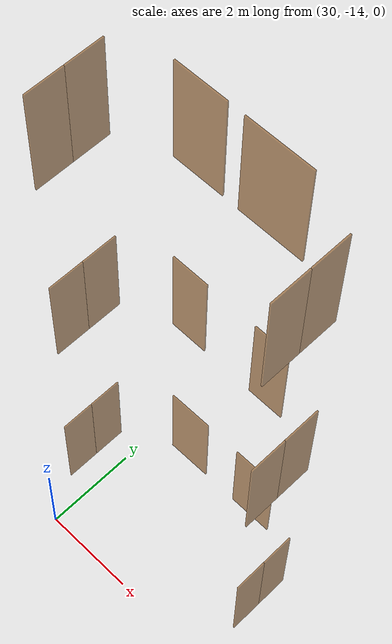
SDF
<sdf version="1.7">
 <world name="sim_world">
  <model name="p12">
   <pose>29.474815561020435 -12.36847797102309 0.0 0 0 -1.5707963267948966</pose>
   <link name="right">
    <pose>0.36403365826197787 0 1.11 0 0 0</pose>
    <visual name="right_visual">
     <geometry><box><size>0.7180673165239557 0.03 2.2</size></box></geometry>
     <material>
      <ambient>0.5 0.25 0 0.6</ambient>
      <diffuse>0.5 0.25 0 0.6</diffuse>
      <pbr><metal><metalness>0.0</metalness></metal></pbr>
     </material>
    </visual>
    <collision name="right_collision">
     <geometry><box><size>0.7180673165239557 0.03 2.2</size></box></geometry>
     <surface><contact><collide_bitmask>0x02</collide_bitmask></contact></surface>
    </collision>
    <inertial>
     <mass>50.0</mass>
     <inertia><ixx>20.17041666666667</ixx><iyy>22.315086129416315</iyy><izz>2.1521694627496455</izz></inertia>
    </inertial>
   </link>
   <joint name="right_joint" type="revolute">
    <parent>world</parent>
    <child>right</child>
    <axis><xyz>0 0 -1</xyz><limit><lower>0</lower><upper>1.57</upper></limit></axis>
    <pose>0.36403365826197787 0 0 0 0 0</pose>
   </joint>
   <link name="left">
    <pose>-0.36403365826197787 0 1.11 0 0 0</pose>
    <visual name="left_visual">
     <geometry><box><size>0.7180673165239557 0.03 2.2</size></box></geometry>
     <material>
      <ambient>0.5 0.25 0 0.6</ambient>
      <diffuse>0.5 0.25 0 0.6</diffuse>
      <pbr><metal><metalness>0.0</metalness></metal></pbr>
     </material>
    </visual>
    <collision name="left_collision">
     <geometry><box><size>0.7180673165239557 0.03 2.2</size></box></geometry>
     <surface><contact><collide_bitmask>0x02</collide_bitmask></contact></surface>
    </collision>
    <inertial>
     <mass>50.0</mass>
     <inertia><ixx>20.17041666666667</ixx><iyy>22.315086129416315</iyy><izz>2.1521694627496455</izz></inertia>
    </inertial>
   </link>
   <joint name="left_joint" type="revolute">
    <parent>world</parent>
    <child>left</child>
    <axis><xyz>0 0 -1</xyz><limit><lower>-1.57</lower><upper>0</upper></limit></axis>
    <pose>-0.36403365826197787 0 0 0 0 0</pose>
   </joint>
   <plugin name="register_component" filename="libregister_component.so">
    <component name="Door">
     <v_max_door>0.5</v_max_door>
     <a_max_door>0.3</a_max_door>
     <a_nom_door>0.15</a_nom_door>
     <dx_min_door>0.01</dx_min_door>
     <f_max_door>500.0</f_max_door>
     <ros_interface>true</ros_interface>
     <door name="p12" type="DoubleSwingDoor" left_joint_name="left_joint" right_joint_name="right_joint"/>
    </component>
   </plugin>
  </model>
  <model name="p13">
   <pose>30.957216082486468 -11.060238955882797 0.0 0 0 -3.1332152078264395</pose>
   <link name="right">
    <pose>0 0 1.11 0 0 0</pose>
    <visual name="right_visual">
     <geometry><box><size>0.9847165442564862 0.03 2.2</size></box></geometry>
     <material>
      <ambient>0.5 0.25 0 0.6</ambient>
      <diffuse>0.5 0.25 0 0.6</diffuse>
      <pbr><metal><metalness>0.0</metalness></metal></pbr>
     </material>
    </visual>
    <collision name="right_collision">
     <geometry><box><size>0.9847165442564862 0.03 2.2</size></box></geometry>
     <surface><contact><collide_bitmask>0x02</collide_bitmask></contact></surface>
    </collision>
    <inertial>
     <mass>50.0</mass>
     <inertia><ixx>20.17041666666667</ixx><iyy>24.206944468885155</iyy><izz>4.044027802218485</izz></inertia>
    </inertial>
   </link>
   <joint name="right_joint" type="revolute">
    <parent>world</parent>
    <child>right</child>
    <axis><xyz>0 0 1</xyz><limit><lower>0</lower><upper>1.57</upper></limit></axis>
    <pose>0.49735827212824313 0 0 0 0 0</pose>
   </joint>
   <plugin name="register_component" filename="libregister_component.so">
    <component name="Door">
     <v_max_door>0.5</v_max_door>
     <a_max_door>0.3</a_max_door>
     <a_nom_door>0.15</a_nom_door>
     <dx_min_door>0.01</dx_min_door>
     <f_max_door>500.0</f_max_door>
     <ros_interface>true</ros_interface>
     <door name="p13" type="SwingDoor" left_joint_name="empty_joint" right_joint_name="right_joint"/>
    </component>
   </plugin>
  </model>
  <model name="p14">
   <pose>32.72966356552401 -11.05352804361353 0.0 0 0 0.005124029352961401</pose>
   <link name="right">
    <pose>0 0 1.11 0 0 0</pose>
    <visual name="right_visual">
     <geometry><box><size>0.9831169454826049 0.03 2.2</size></box></geometry>
     <material>
      <ambient>0.5 0.25 0 0.6</ambient>
      <diffuse>0.5 0.25 0 0.6</diffuse>
      <pbr><metal><metalness>0.0</metalness></metal></pbr>
     </material>
    </visual>
    <collision name="right_collision">
     <geometry><box><size>0.9831169454826049 0.03 2.2</size></box></geometry>
     <surface><contact><collide_bitmask>0x02</collide_bitmask></contact></surface>
    </collision>
    <inertial>
     <mass>50.0</mass>
     <inertia><ixx>20.17041666666667</ixx><iyy>24.193828868729366</iyy><izz>4.030912202062696</izz></inertia>
    </inertial>
   </link>
   <joint name="right_joint" type="revolute">
    <parent>world</parent>
    <child>right</child>
    <axis><xyz>0 0 -1</xyz><limit><lower>0</lower><upper>1.57</upper></limit></axis>
    <pose>0.49655847274130244 0 0 0 0 0</pose>
   </joint>
   <plugin name="register_component" filename="libregister_component.so">
    <component name="Door">
     <v_max_door>0.5</v_max_door>
     <a_max_door>0.3</a_max_door>
     <a_nom_door>0.15</a_nom_door>
     <dx_min_door>0.01</dx_min_door>
     <f_max_door>500.0</f_max_door>
     <ros_interface>true</ros_interface>
     <door name="p14" type="SwingDoor" left_joint_name="empty_joint" right_joint_name="right_joint"/>
    </component>
   </plugin>
  </model>
  <model name="p15">
   <pose>34.207986430031724 -12.349534087878887 0.0 0 0 1.5775430026090258</pose>
   <link name="right">
    <pose>0.35736976701174594 0 1.11 0 0 0</pose>
    <visual name="right_visual">
     <geometry><box><size>0.7047395340234919 0.03 2.2</size></box></geometry>
     <material>
      <ambient>0.5 0.25 0 0.6</ambient>
      <diffuse>0.5 0.25 0 0.6</diffuse>
      <pbr><metal><metalness>0.0</metalness></metal></pbr>
     </material>
    </visual>
    <collision name="right_collision">
     <geometry><box><size>0.7047395340234919 0.03 2.2</size></box></geometry>
     <surface><contact><collide_bitmask>0x02</collide_bitmask></contact></surface>
    </collision>
    <inertial>
     <mass>50.0</mass>
     <inertia><ixx>20.17041666666667</ixx><iyy>22.23607421173187</iyy><izz>2.073157545065202</izz></inertia>
    </inertial>
   </link>
   <joint name="right_joint" type="revolute">
    <parent>world</parent>
    <child>right</child>
    <axis><xyz>0 0 -1</xyz><limit><lower>0</lower><upper>1.57</upper></limit></axis>
    <pose>0.35736976701174594 0 0 0 0 0</pose>
   </joint>
   <link name="left">
    <pose>-0.35736976701174594 0 1.11 0 0 0</pose>
    <visual name="left_visual">
     <geometry><box><size>0.7047395340234919 0.03 2.2</size></box></geometry>
     <material>
      <ambient>0.5 0.25 0 0.6</ambient>
      <diffuse>0.5 0.25 0 0.6</diffuse>
      <pbr><metal><metalness>0.0</metalness></metal></pbr>
     </material>
    </visual>
    <collision name="left_collision">
     <geometry><box><size>0.7047395340234919 0.03 2.2</size></box></geometry>
     <surface><contact><collide_bitmask>0x02</collide_bitmask></contact></surface>
    </collision>
    <inertial>
     <mass>50.0</mass>
     <inertia><ixx>20.17041666666667</ixx><iyy>22.23607421173187</iyy><izz>2.073157545065202</izz></inertia>
    </inertial>
   </link>
   <joint name="left_joint" type="revolute">
    <parent>world</parent>
    <child>left</child>
    <axis><xyz>0 0 -1</xyz><limit><lower>-1.57</lower><upper>0</upper></limit></axis>
    <pose>-0.35736976701174594 0 0 0 0 0</pose>
   </joint>
   <plugin name="register_component" filename="libregister_component.so">
    <component name="Door">
     <v_max_door>0.5</v_max_door>
     <a_max_door>0.3</a_max_door>
     <a_nom_door>0.15</a_nom_door>
     <dx_min_door>0.01</dx_min_door>
     <f_max_door>500.0</f_max_door>
     <ros_interface>true</ros_interface>
     <door name="p15" type="DoubleSwingDoor" left_joint_name="left_joint" right_joint_name="right_joint"/>
    </component>
   </plugin>
  </model>
  <model name="puerta22">
   <pose>29.46294005985935 -12.239964542563605 5.0 0 0 1.5661584308524106</pose>
   <link name="right">
    <pose>0.38386536902890067 0 1.11 0 0 0</pose>
    <visual name="right_visual">
     <geometry><box><size>0.7577307380578013 0.03 2.2</size></box></geometry>
     <material>
      <ambient>0.5 0.25 0 0.6</ambient>
      <diffuse>0.5 0.25 0 0.6</diffuse>
      <pbr><metal><metalness>0.0</metalness></metal></pbr>
     </material>
    </visual>
    <collision name="right_collision">
     <geometry><box><size>0.7577307380578013 0.03 2.2</size></box></geometry>
     <surface><contact><collide_bitmask>0x02</collide_bitmask></contact></surface>
    </collision>
    <inertial>
     <mass>50.0</mass>
     <inertia><ixx>20.17041666666667</ixx><iyy>22.55898279749009</iyy><izz>2.3960661308234186</izz></inertia>
    </inertial>
   </link>
   <joint name="right_joint" type="revolute">
    <parent>world</parent>
    <child>right</child>
    <axis><xyz>0 0 1</xyz><limit><lower>0</lower><upper>1.57</upper></limit></axis>
    <pose>0.38386536902890067 0 0 0 0 0</pose>
   </joint>
   <link name="left">
    <pose>-0.38386536902890067 0 1.11 0 0 0</pose>
    <visual name="left_visual">
     <geometry><box><size>0.7577307380578013 0.03 2.2</size></box></geometry>
     <material>
      <ambient>0.5 0.25 0 0.6</ambient>
      <diffuse>0.5 0.25 0 0.6</diffuse>
      <pbr><metal><metalness>0.0</metalness></metal></pbr>
     </material>
    </visual>
    <collision name="left_collision">
     <geometry><box><size>0.7577307380578013 0.03 2.2</size></box></geometry>
     <surface><contact><collide_bitmask>0x02</collide_bitmask></contact></surface>
    </collision>
    <inertial>
     <mass>50.0</mass>
     <inertia><ixx>20.17041666666667</ixx><iyy>22.55898279749009</iyy><izz>2.3960661308234186</izz></inertia>
    </inertial>
   </link>
   <joint name="left_joint" type="revolute">
    <parent>world</parent>
    <child>left</child>
    <axis><xyz>0 0 1</xyz><limit><lower>-1.57</lower><upper>0</upper></limit></axis>
    <pose>-0.38386536902890067 0 0 0 0 0</pose>
   </joint>
   <plugin name="register_component" filename="libregister_component.so">
    <component name="Door">
     <v_max_door>0.5</v_max_door>
     <a_max_door>0.3</a_max_door>
     <a_nom_door>0.15</a_nom_door>
     <dx_min_door>0.01</dx_min_door>
     <f_max_door>500.0</f_max_door>
     <ros_interface>true</ros_interface>
     <door name="puerta22" type="DoubleSwingDoor" left_joint_name="left_joint" right_joint_name="right_joint"/>
    </component>
   </plugin>
  </model>
  <model name="puerta49">
   <pose>34.194663559663226 -12.249430229009743 5.0 0 0 1.5718006454881805</pose>
   <link name="right">
    <pose>0.38508900478977176 0 1.11 0 0 0</pose>
    <visual name="right_visual">
     <geometry><box><size>0.7601780095795435 0.03 2.2</size></box></geometry>
     <material>
      <ambient>0.5 0.25 0 0.6</ambient>
      <diffuse>0.5 0.25 0 0.6</diffuse>
      <pbr><metal><metalness>0.0</metalness></metal></pbr>
     </material>
    </visual>
    <collision name="right_collision">
     <geometry><box><size>0.7601780095795435 0.03 2.2</size></box></geometry>
     <surface><contact><collide_bitmask>0x02</collide_bitmask></contact></surface>
    </collision>
    <inertial>
     <mass>50.0</mass>
     <inertia><ixx>20.17041666666667</ixx><iyy>22.57446085936799</iyy><izz>2.411544192701319</izz></inertia>
    </inertial>
   </link>
   <joint name="right_joint" type="revolute">
    <parent>world</parent>
    <child>right</child>
    <axis><xyz>0 0 -1</xyz><limit><lower>0</lower><upper>1.57</upper></limit></axis>
    <pose>0.38508900478977176 0 0 0 0 0</pose>
   </joint>
   <link name="left">
    <pose>-0.38508900478977176 0 1.11 0 0 0</pose>
    <visual name="left_visual">
     <geometry><box><size>0.7601780095795435 0.03 2.2</size></box></geometry>
     <material>
      <ambient>0.5 0.25 0 0.6</ambient>
      <diffuse>0.5 0.25 0 0.6</diffuse>
      <pbr><metal><metalness>0.0</metalness></metal></pbr>
     </material>
    </visual>
    <collision name="left_collision">
     <geometry><box><size>0.7601780095795435 0.03 2.2</size></box></geometry>
     <surface><contact><collide_bitmask>0x02</collide_bitmask></contact></surface>
    </collision>
    <inertial>
     <mass>50.0</mass>
     <inertia><ixx>20.17041666666667</ixx><iyy>22.57446085936799</iyy><izz>2.411544192701319</izz></inertia>
    </inertial>
   </link>
   <joint name="left_joint" type="revolute">
    <parent>world</parent>
    <child>left</child>
    <axis><xyz>0 0 -1</xyz><limit><lower>-1.57</lower><upper>0</upper></limit></axis>
    <pose>-0.38508900478977176 0 0 0 0 0</pose>
   </joint>
   <plugin name="register_component" filename="libregister_component.so">
    <component name="Door">
     <v_max_door>0.5</v_max_door>
     <a_max_door>0.3</a_max_door>
     <a_nom_door>0.15</a_nom_door>
     <dx_min_door>0.01</dx_min_door>
     <f_max_door>500.0</f_max_door>
     <ros_interface>true</ros_interface>
     <door name="puerta49" type="DoubleSwingDoor" left_joint_name="left_joint" right_joint_name="right_joint"/>
    </component>
   </plugin>
  </model>
  <model name="puerta50">
   <pose>30.871268907147638 -11.064008087557392 5.0 0 0 -3.1414395949889733</pose>
   <link name="right">
    <pose>0 0 1.11 0 0 0</pose>
    <visual name="right_visual">
     <geometry><box><size>0.8125719073215177 0.03 2.2</size></box></geometry>
     <material>
      <ambient>0.5 0.25 0 0.6</ambient>
      <diffuse>0.5 0.25 0 0.6</diffuse>
      <pbr><metal><metalness>0.0</metalness></metal></pbr>
     </material>
    </visual>
    <collision name="right_collision">
     <geometry><box><size>0.8125719073215177 0.03 2.2</size></box></geometry>
     <surface><contact><collide_bitmask>0x02</collide_bitmask></contact></surface>
    </collision>
    <inertial>
     <mass>50.0</mass>
     <inertia><ixx>20.17041666666667</ixx><iyy>22.91780460236721</iyy><izz>2.754887935700539</izz></inertia>
    </inertial>
   </link>
   <joint name="right_joint" type="revolute">
    <parent>world</parent>
    <child>right</child>
    <axis><xyz>0 0 1</xyz><limit><lower>0</lower><upper>1.57</upper></limit></axis>
    <pose>0.4112859536607589 0 0 0 0 0</pose>
   </joint>
   <plugin name="register_component" filename="libregister_component.so">
    <component name="Door">
     <v_max_door>0.5</v_max_door>
     <a_max_door>0.3</a_max_door>
     <a_nom_door>0.15</a_nom_door>
     <dx_min_door>0.01</dx_min_door>
     <f_max_door>500.0</f_max_door>
     <ros_interface>true</ros_interface>
     <door name="puerta50" type="SwingDoor" left_joint_name="empty_joint" right_joint_name="right_joint"/>
    </component>
   </plugin>
  </model>
  <model name="puerta51">
   <pose>32.78767353054155 -11.06450373386996 5.0 0 0 0.0002944333277341927</pose>
   <link name="right">
    <pose>0 0 1.11 0 0 0</pose>
    <visual name="right_visual">
     <geometry><box><size>0.7760126698629353 0.03 2.2</size></box></geometry>
     <material>
      <ambient>0.5 0.25 0 0.6</ambient>
      <diffuse>0.5 0.25 0 0.6</diffuse>
      <pbr><metal><metalness>0.0</metalness></metal></pbr>
     </material>
    </visual>
    <collision name="right_collision">
     <geometry><box><size>0.7760126698629353 0.03 2.2</size></box></geometry>
     <surface><contact><collide_bitmask>0x02</collide_bitmask></contact></surface>
    </collision>
    <inertial>
     <mass>50.0</mass>
     <inertia><ixx>20.17041666666667</ixx><iyy>22.675815265782507</iyy><izz>2.5128985991158377</izz></inertia>
    </inertial>
   </link>
   <joint name="right_joint" type="revolute">
    <parent>world</parent>
    <child>right</child>
    <axis><xyz>0 0 -1</xyz><limit><lower>0</lower><upper>1.57</upper></limit></axis>
    <pose>0.39300633493146764 0 0 0 0 0</pose>
   </joint>
   <plugin name="register_component" filename="libregister_component.so">
    <component name="Door">
     <v_max_door>0.5</v_max_door>
     <a_max_door>0.3</a_max_door>
     <a_nom_door>0.15</a_nom_door>
     <dx_min_door>0.01</dx_min_door>
     <f_max_door>500.0</f_max_door>
     <ros_interface>true</ros_interface>
     <door name="puerta51" type="SwingDoor" left_joint_name="empty_joint" right_joint_name="right_joint"/>
    </component>
   </plugin>
  </model>
  <model name="puerta110">
   <pose>29.46274141158851 -12.23973743631801 10.0 0 0 1.5661601413292954</pose>
   <link name="right">
    <pose>0.3838698554961394 0 1.11 0 0 0</pose>
    <visual name="right_visual">
     <geometry><box><size>0.7577397109922788 0.03 2.2</size></box></geometry>
     <material>
      <ambient>0.5 0.25 0 0.6</ambient>
      <diffuse>0.5 0.25 0 0.6</diffuse>
      <pbr><metal><metalness>0.0</metalness></metal></pbr>
     </material>
    </visual>
    <collision name="right_collision">
     <geometry><box><size>0.7577397109922788 0.03 2.2</size></box></geometry>
     <surface><contact><collide_bitmask>0x02</collide_bitmask></contact></surface>
    </collision>
    <inertial>
     <mass>50.0</mass>
     <inertia><ixx>20.17041666666667</ixx><iyy>22.559039456727763</iyy><izz>2.3961227900610926</izz></inertia>
    </inertial>
   </link>
   <joint name="right_joint" type="revolute">
    <parent>world</parent>
    <child>right</child>
    <axis><xyz>0 0 1</xyz><limit><lower>0</lower><upper>1.57</upper></limit></axis>
    <pose>0.3838698554961394 0 0 0 0 0</pose>
   </joint>
   <link name="left">
    <pose>-0.3838698554961394 0 1.11 0 0 0</pose>
    <visual name="left_visual">
     <geometry><box><size>0.7577397109922788 0.03 2.2</size></box></geometry>
     <material>
      <ambient>0.5 0.25 0 0.6</ambient>
      <diffuse>0.5 0.25 0 0.6</diffuse>
      <pbr><metal><metalness>0.0</metalness></metal></pbr>
     </material>
    </visual>
    <collision name="left_collision">
     <geometry><box><size>0.7577397109922788 0.03 2.2</size></box></geometry>
     <surface><contact><collide_bitmask>0x02</collide_bitmask></contact></surface>
    </collision>
    <inertial>
     <mass>50.0</mass>
     <inertia><ixx>20.17041666666667</ixx><iyy>22.559039456727763</iyy><izz>2.3961227900610926</izz></inertia>
    </inertial>
   </link>
   <joint name="left_joint" type="revolute">
    <parent>world</parent>
    <child>left</child>
    <axis><xyz>0 0 1</xyz><limit><lower>-1.57</lower><upper>0</upper></limit></axis>
    <pose>-0.3838698554961394 0 0 0 0 0</pose>
   </joint>
   <plugin name="register_component" filename="libregister_component.so">
    <component name="Door">
     <v_max_door>0.5</v_max_door>
     <a_max_door>0.3</a_max_door>
     <a_nom_door>0.15</a_nom_door>
     <dx_min_door>0.01</dx_min_door>
     <f_max_door>500.0</f_max_door>
     <ros_interface>true</ros_interface>
     <door name="puerta110" type="DoubleSwingDoor" left_joint_name="left_joint" right_joint_name="right_joint"/>
    </component>
   </plugin>
  </model>
  <model name="puerta128">
   <pose>34.194520230097055 -12.249195139797092 10.0 0 0 1.571802355965063</pose>
   <link name="right">
    <pose>0.385093505558383 0 1.11 0 0 0</pose>
    <visual name="right_visual">
     <geometry><box><size>0.760187011116766 0.03 2.2</size></box></geometry>
     <material>
      <ambient>0.5 0.25 0 0.6</ambient>
      <diffuse>0.5 0.25 0 0.6</diffuse>
      <pbr><metal><metalness>0.0</metalness></metal></pbr>
     </material>
    </visual>
    <collision name="right_collision">
     <geometry><box><size>0.760187011116766 0.03 2.2</size></box></geometry>
     <surface><contact><collide_bitmask>0x02</collide_bitmask></contact></surface>
    </collision>
    <inertial>
     <mass>50.0</mass>
     <inertia><ixx>20.17041666666667</ixx><iyy>22.574517882794346</iyy><izz>2.411601216127676</izz></inertia>
    </inertial>
   </link>
   <joint name="right_joint" type="revolute">
    <parent>world</parent>
    <child>right</child>
    <axis><xyz>0 0 -1</xyz><limit><lower>0</lower><upper>1.57</upper></limit></axis>
    <pose>0.385093505558383 0 0 0 0 0</pose>
   </joint>
   <link name="left">
    <pose>-0.385093505558383 0 1.11 0 0 0</pose>
    <visual name="left_visual">
     <geometry><box><size>0.760187011116766 0.03 2.2</size></box></geometry>
     <material>
      <ambient>0.5 0.25 0 0.6</ambient>
      <diffuse>0.5 0.25 0 0.6</diffuse>
      <pbr><metal><metalness>0.0</metalness></metal></pbr>
     </material>
    </visual>
    <collision name="left_collision">
     <geometry><box><size>0.760187011116766 0.03 2.2</size></box></geometry>
     <surface><contact><collide_bitmask>0x02</collide_bitmask></contact></surface>
    </collision>
    <inertial>
     <mass>50.0</mass>
     <inertia><ixx>20.17041666666667</ixx><iyy>22.574517882794346</iyy><izz>2.411601216127676</izz></inertia>
    </inertial>
   </link>
   <joint name="left_joint" type="revolute">
    <parent>world</parent>
    <child>left</child>
    <axis><xyz>0 0 -1</xyz><limit><lower>-1.57</lower><upper>0</upper></limit></axis>
    <pose>-0.385093505558383 0 0 0 0 0</pose>
   </joint>
   <plugin name="register_component" filename="libregister_component.so">
    <component name="Door">
     <v_max_door>0.5</v_max_door>
     <a_max_door>0.3</a_max_door>
     <a_nom_door>0.15</a_nom_door>
     <dx_min_door>0.01</dx_min_door>
     <f_max_door>500.0</f_max_door>
     <ros_interface>true</ros_interface>
     <door name="puerta128" type="DoubleSwingDoor" left_joint_name="left_joint" right_joint_name="right_joint"/>
    </component>
   </plugin>
  </model>
  <model name="puerta129">
   <pose>30.993275963577144 -11.061934601719253 10.0 0 0 -3.1380426301032736</pose>
   <link name="right">
    <pose>0 0 1.11 0 0 0</pose>
    <visual name="right_visual">
     <geometry><box><size>1.0569707470562129 0.03 2.2</size></box></geometry>
     <material>
      <ambient>0.5 0.25 0 0.6</ambient>
      <diffuse>0.5 0.25 0 0.6</diffuse>
      <pbr><metal><metalness>0.0</metalness></metal></pbr>
     </material>
    </visual>
    <collision name="right_collision">
     <geometry><box><size>1.0569707470562129 0.03 2.2</size></box></geometry>
     <surface><contact><collide_bitmask>0x02</collide_bitmask></contact></surface>
    </collision>
    <inertial>
     <mass>50.0</mass>
     <inertia><ixx>20.17041666666667</ixx><iyy>24.82161316721904</iyy><izz>4.658696500552369</izz></inertia>
    </inertial>
   </link>
   <joint name="right_joint" type="revolute">
    <parent>world</parent>
    <child>right</child>
    <axis><xyz>0 0 1</xyz><limit><lower>0</lower><upper>1.57</upper></limit></axis>
    <pose>0.5334853735281064 0 0 0 0 0</pose>
   </joint>
   <plugin name="register_component" filename="libregister_component.so">
    <component name="Door">
     <v_max_door>0.5</v_max_door>
     <a_max_door>0.3</a_max_door>
     <a_nom_door>0.15</a_nom_door>
     <dx_min_door>0.01</dx_min_door>
     <f_max_door>500.0</f_max_door>
     <ros_interface>true</ros_interface>
     <door name="puerta129" type="SwingDoor" left_joint_name="empty_joint" right_joint_name="right_joint"/>
    </component>
   </plugin>
  </model>
  <model name="puerta130">
   <pose>32.51385892995138 -11.065821949028553 10.0 0 0 0.0025217074675154363</pose>
   <link name="right">
    <pose>0 0 1.11 0 0 0</pose>
    <visual name="right_visual">
     <geometry><box><size>1.3233316610688295 0.03 2.2</size></box></geometry>
     <material>
      <ambient>0.5 0.25 0 0.6</ambient>
      <diffuse>0.5 0.25 0 0.6</diffuse>
      <pbr><metal><metalness>0.0</metalness></metal></pbr>
     </material>
    </visual>
    <collision name="right_collision">
     <geometry><box><size>1.3233316610688295 0.03 2.2</size></box></geometry>
     <surface><contact><collide_bitmask>0x02</collide_bitmask></contact></surface>
    </collision>
    <inertial>
     <mass>50.0</mass>
     <inertia><ixx>20.17041666666667</ixx><iyy>27.463361188279954</iyy><izz>7.300444521613281</izz></inertia>
    </inertial>
   </link>
   <joint name="right_joint" type="revolute">
    <parent>world</parent>
    <child>right</child>
    <axis><xyz>0 0 -1</xyz><limit><lower>0</lower><upper>1.57</upper></limit></axis>
    <pose>0.6666658305344147 0 0 0 0 0</pose>
   </joint>
   <plugin name="register_component" filename="libregister_component.so">
    <component name="Door">
     <v_max_door>0.5</v_max_door>
     <a_max_door>0.3</a_max_door>
     <a_nom_door>0.15</a_nom_door>
     <dx_min_door>0.01</dx_min_door>
     <f_max_door>500.0</f_max_door>
     <ros_interface>true</ros_interface>
     <door name="puerta130" type="SwingDoor" left_joint_name="empty_joint" right_joint_name="right_joint"/>
    </component>
   </plugin>
  </model>
 </world>
</sdf>
